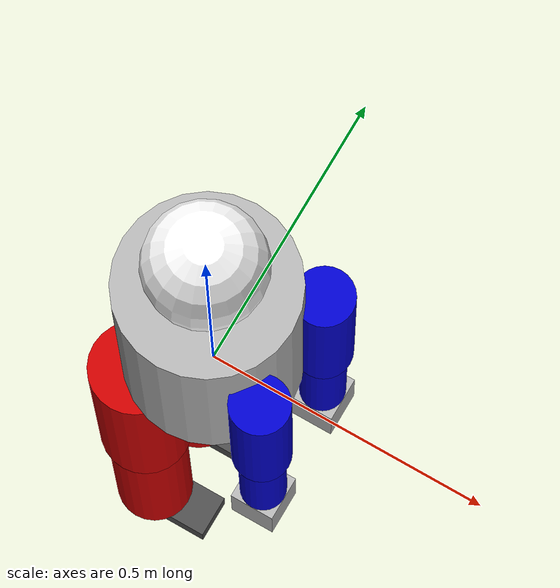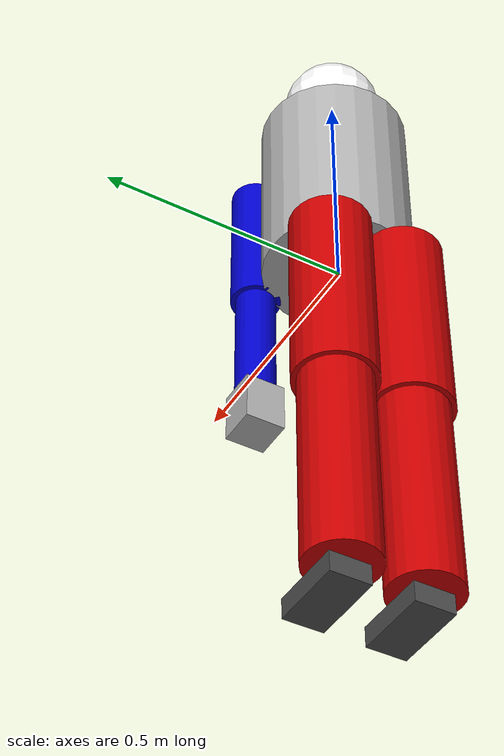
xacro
<?xml version="1.0"?>
<robot xmlns:xacro="http://www.ros.org/wiki/xacro" name="simple_humanoid">

  <!-- Define properties -->
  <xacro:property name="M_PI" value="3.1415926535897931" />
  <xacro:property name="torso_mass" value="10.0" />
  <xacro:property name="head_mass" value="2.0" />
  <xacro:property name="arm_mass" value="1.5" />
  <xacro:property name="leg_mass" value="3.0" />

  <!-- Base link -->
  <link name="base_link" />

  <!-- Torso -->
  <link name="torso">
    <inertial>
      <mass value="${torso_mass}" />
      <origin xyz="0 0 0.2" rpy="0 0 0" />
      <inertia ixx="0.4" ixy="0.0" ixz="0.0" iyy="0.4" iyz="0.0" izz="0.2" />
    </inertial>
    <visual>
      <origin xyz="0 0 0.2" rpy="0 0 0" />
      <geometry>
        <cylinder length="0.4" radius="0.15" />
      </geometry>
      <material name="light_grey">
        <color rgba="0.7 0.7 0.7 1.0" />
      </material>
    </visual>
    <collision>
      <origin xyz="0 0 0.2" rpy="0 0 0" />
      <geometry>
        <cylinder length="0.4" radius="0.15" />
      </geometry>
    </collision>
  </link>

  <joint name="base_to_torso" type="fixed">
    <parent link="base_link" />
    <child link="torso" />
    <origin xyz="0 0 0" rpy="0 0 0" />
  </joint>

  <!-- Head -->
  <link name="head">
    <inertial>
      <mass value="${head_mass}" />
      <origin xyz="0 0 0.1" rpy="0 0 0" />
      <inertia ixx="0.02" ixy="0.0" ixz="0.0" iyy="0.02" iyz="0.0" izz="0.02" />
    </inertial>
    <visual>
      <origin xyz="0 0 0.1" rpy="0 0 0" />
      <geometry>
        <sphere radius="0.1" />
      </geometry>
      <material name="white">
        <color rgba="1.0 1.0 1.0 1.0" />
      </material>
    </visual>
    <collision>
      <origin xyz="0 0 0.1" rpy="0 0 0" />
      <geometry>
        <sphere radius="0.1" />
      </geometry>
    </collision>
  </link>

  <!-- Neck Joint -->
  <joint name="neck_joint" type="revolute">
    <parent link="torso" />
    <child link="head" />
    <origin xyz="0.0 0.0 0.4" rpy="0 0 0" />
    <axis xyz="0 1 0" />
    <limit lower="${-M_PI/3}" upper="${M_PI/3}" effort="10" velocity="2.0" />
  </joint>

  <!-- Left Arm Macro -->
  <xacro:macro name="simple_arm" params="prefix parent *origin">
    <link name="${prefix}_upper_arm">
      <inertial>
        <mass value="${arm_mass}" />
        <origin xyz="0 0 -0.15" rpy="0 0 0" />
        <inertia ixx="0.01" ixy="0.0" ixz="0.0" iyy="0.01" iyz="0.0" izz="0.005" />
      </inertial>
      <visual>
        <origin xyz="0 0 -0.15" rpy="0 0 0" />
        <geometry>
          <cylinder length="0.3" radius="0.05" />
        </geometry>
        <material name="blue">
          <color rgba="0 0 0.8 1.0" />
        </material>
      </visual>
      <collision>
        <origin xyz="0 0 -0.15" rpy="0 0 0" />
        <geometry>
          <cylinder length="0.3" radius="0.05" />
        </geometry>
      </collision>
    </link>

    <joint name="${prefix}_shoulder_joint" type="revolute">
      <parent link="${parent}" />
      <child link="${prefix}_upper_arm" />
      <xacro:insert_block name="origin" />
      <axis xyz="0 0 1" />
      <limit lower="${-M_PI/2}" upper="${M_PI/2}" effort="15" velocity="1.5" />
    </joint>

    <link name="${prefix}_lower_arm">
      <inertial>
        <mass value="${arm_mass * 0.7}" />
        <origin xyz="0 0 -0.12" rpy="0 0 0" />
        <inertia ixx="0.005" ixy="0.0" ixz="0.0" iyy="0.005" iyz="0.0" izz="0.003" />
      </inertial>
      <visual>
        <origin xyz="0 0 -0.12" rpy="0 0 0" />
        <geometry>
          <cylinder length="0.24" radius="0.04" />
        </geometry>
        <material name="blue">
          <color rgba="0 0 0.8 1.0" />
        </material>
      </visual>
      <collision>
        <origin xyz="0 0 -0.12" rpy="0 0 0" />
        <geometry>
          <cylinder length="0.24" radius="0.04" />
        </geometry>
      </collision>
    </link>

    <joint name="${prefix}_elbow_joint" type="revolute">
      <parent link="${prefix}_upper_arm" />
      <child link="${prefix}_lower_arm" />
      <origin xyz="0.0 0.0 -0.3" rpy="0 0 0" />
      <axis xyz="0 0 1" />
      <limit lower="${-M_PI/2}" upper="${M_PI/2}" effort="10" velocity="1.0" />
    </joint>

    <link name="${prefix}_hand">
      <inertial>
        <mass value="${arm_mass * 0.3}" />
        <origin xyz="0 0 -0.05" rpy="0 0 0" />
        <inertia ixx="0.001" ixy="0.0" ixz="0.0" iyy="0.001" iyz="0.0" izz="0.001" />
      </inertial>
      <visual>
        <origin xyz="0 0 -0.05" rpy="0 0 0" />
        <geometry>
          <box size="0.08 0.08 0.1" />
        </geometry>
        <material name="light_grey">
          <color rgba="0.7 0.7 0.7 1.0" />
        </material>
      </visual>
      <collision>
        <origin xyz="0 0 -0.05" rpy="0 0 0" />
        <geometry>
          <box size="0.08 0.08 0.1" />
        </geometry>
      </collision>
    </link>

    <joint name="${prefix}_wrist_joint" type="revolute">
      <parent link="${prefix}_lower_arm" />
      <child link="${prefix}_hand" />
      <origin xyz="0.0 0.0 -0.24" rpy="0 0 0" />
      <axis xyz="0 1 0" />
      <limit lower="${-M_PI/3}" upper="${M_PI/3}" effort="5" velocity="1.0" />
    </joint>
  </xacro:macro>

  <!-- Right Arm Macro -->
  <xacro:macro name="simple_arm_right" params="prefix parent *origin">
    <link name="${prefix}_upper_arm">
      <inertial>
        <mass value="${arm_mass}" />
        <origin xyz="0 0 -0.15" rpy="0 0 0" />
        <inertia ixx="0.01" ixy="0.0" ixz="0.0" iyy="0.01" iyz="0.0" izz="0.005" />
      </inertial>
      <visual>
        <origin xyz="0 0 -0.15" rpy="0 0 0" />
        <geometry>
          <cylinder length="0.3" radius="0.05" />
        </geometry>
        <material name="blue">
          <color rgba="0 0 0.8 1.0" />
        </material>
      </visual>
      <collision>
        <origin xyz="0 0 -0.15" rpy="0 0 0" />
        <geometry>
          <cylinder length="0.3" radius="0.05" />
        </geometry>
      </collision>
    </link>

    <joint name="${prefix}_shoulder_joint" type="revolute">
      <parent link="${parent}" />
      <child link="${prefix}_upper_arm" />
      <xacro:insert_block name="origin" />
      <axis xyz="0 0 1" />
      <limit lower="${-M_PI/2}" upper="${M_PI/2}" effort="15" velocity="1.5" />
    </joint>

    <link name="${prefix}_lower_arm">
      <inertial>
        <mass value="${arm_mass * 0.7}" />
        <origin xyz="0 0 -0.12" rpy="0 0 0" />
        <inertia ixx="0.005" ixy="0.0" ixz="0.0" iyy="0.005" iyz="0.0" izz="0.003" />
      </inertial>
      <visual>
        <origin xyz="0 0 -0.12" rpy="0 0 0" />
        <geometry>
          <cylinder length="0.24" radius="0.04" />
        </geometry>
        <material name="blue">
          <color rgba="0 0 0.8 1.0" />
        </material>
      </visual>
      <collision>
        <origin xyz="0 0 -0.12" rpy="0 0 0" />
        <geometry>
          <cylinder length="0.24" radius="0.04" />
        </geometry>
      </collision>
    </link>

    <joint name="${prefix}_elbow_joint" type="revolute">
      <parent link="${prefix}_upper_arm" />
      <child link="${prefix}_lower_arm" />
      <origin xyz="0.0 0.0 -0.3" rpy="0 0 0" />
      <axis xyz="0 0 1" />
      <limit lower="${-M_PI/2}" upper="${M_PI/2}" effort="10" velocity="1.0" />
    </joint>

    <link name="${prefix}_hand">
      <inertial>
        <mass value="${arm_mass * 0.3}" />
        <origin xyz="0 0 -0.05" rpy="0 0 0" />
        <inertia ixx="0.001" ixy="0.0" ixz="0.0" iyy="0.001" iyz="0.0" izz="0.001" />
      </inertial>
      <visual>
        <origin xyz="0 0 -0.05" rpy="0 0 0" />
        <geometry>
          <box size="0.08 0.08 0.1" />
        </geometry>
        <material name="light_grey">
          <color rgba="0.7 0.7 0.7 1.0" />
        </material>
      </visual>
      <collision>
        <origin xyz="0 0 -0.05" rpy="0 0 0" />
        <geometry>
          <box size="0.08 0.08 0.1" />
        </geometry>
      </collision>
    </link>

    <joint name="${prefix}_wrist_joint" type="revolute">
      <parent link="${prefix}_lower_arm" />
      <child link="${prefix}_hand" />
      <origin xyz="0.0 0.0 -0.24" rpy="0 0 0" />
      <axis xyz="0 1 0" />
      <limit lower="${-M_PI/3}" upper="${M_PI/3}" effort="5" velocity="1.0" />
    </joint>
  </xacro:macro>

  <!-- Left Leg Macro -->
  <xacro:macro name="simple_leg" params="prefix parent *origin">
    <link name="${prefix}_upper_leg">
      <inertial>
        <mass value="${leg_mass}" />
        <origin xyz="0 0 -0.2" rpy="0 0 0" />
        <inertia ixx="0.05" ixy="0.0" ixz="0.0" iyy="0.05" iyz="0.0" izz="0.02" />
      </inertial>
      <visual>
        <origin xyz="0 0 -0.2" rpy="0 0 0" />
        <geometry>
          <cylinder length="0.4" radius="0.08" />
        </geometry>
        <material name="red">
          <color rgba="0.8 0 0 1.0" />
        </material>
      </visual>
      <collision>
        <origin xyz="0 0 -0.2" rpy="0 0 0" />
        <geometry>
          <cylinder length="0.4" radius="0.08" />
        </geometry>
      </collision>
    </link>

    <joint name="${prefix}_hip_joint" type="revolute">
      <parent link="${parent}" />
      <child link="${prefix}_upper_leg" />
      <xacro:insert_block name="origin" />
      <axis xyz="0 0 1" />
      <limit lower="${-M_PI/3}" upper="${M_PI/3}" effort="20" velocity="1.0" />
    </joint>

    <link name="${prefix}_lower_leg">
      <inertial>
        <mass value="${leg_mass * 0.8}" />
        <origin xyz="0 0 -0.2" rpy="0 0 0" />
        <inertia ixx="0.04" ixy="0.0" ixz="0.0" iyy="0.04" iyz="0.0" izz="0.015" />
      </inertial>
      <visual>
        <origin xyz="0 0 -0.2" rpy="0 0 0" />
        <geometry>
          <cylinder length="0.4" radius="0.07" />
        </geometry>
        <material name="red">
          <color rgba="0.8 0 0 1.0" />
        </material>
      </visual>
      <collision>
        <origin xyz="0 0 -0.2" rpy="0 0 0" />
        <geometry>
          <cylinder length="0.4" radius="0.07" />
        </geometry>
      </collision>
    </link>

    <joint name="${prefix}_knee_joint" type="revolute">
      <parent link="${prefix}_upper_leg" />
      <child link="${prefix}_lower_leg" />
      <origin xyz="0.0 0.0 -0.4" rpy="0 0 0" />
      <axis xyz="0 0 1" />
      <limit lower="0" upper="${M_PI/2}" effort="20" velocity="1.0" />
    </joint>

    <link name="${prefix}_foot">
      <inertial>
        <mass value="${leg_mass * 0.3}" />
        <origin xyz="0.05 0 -0.02" rpy="0 0 0" />
        <inertia ixx="0.002" ixy="0.0" ixz="0.0" iyy="0.003" iyz="0.0" izz="0.004" />
      </inertial>
      <visual>
        <origin xyz="0.05 0 -0.02" rpy="0 0 0" />
        <geometry>
          <box size="0.15 0.08 0.04" />
        </geometry>
        <material name="dark_grey">
          <color rgba="0.3 0.3 0.3 1.0" />
        </material>
      </visual>
      <collision>
        <origin xyz="0.05 0 -0.02" rpy="0 0 0" />
        <geometry>
          <box size="0.15 0.08 0.04" />
        </geometry>
      </collision>
    </link>

    <joint name="${prefix}_ankle_joint" type="revolute">
      <parent link="${prefix}_lower_leg" />
      <child link="${prefix}_foot" />
      <origin xyz="0.0 0.0 -0.4" rpy="0 0 0" />
      <axis xyz="0 1 0" />
      <limit lower="${-M_PI/6}" upper="${M_PI/6}" effort="10" velocity="0.5" />
    </joint>
  </xacro:macro>

  <!-- Left Arm -->
  <xacro:simple_arm prefix="left" parent="torso">
    <origin xyz="0.15 0.1 0.3" rpy="0 0 0" />
  </xacro:simple_arm>

  <!-- Right Arm -->
  <xacro:simple_arm_right prefix="right" parent="torso">
    <origin xyz="0.15 -0.1 0.3" rpy="0 0 0" />
  </xacro:simple_arm_right>

  <!-- Left Leg -->
  <xacro:simple_leg prefix="left" parent="torso">
    <origin xyz="-0.1 0.08 0.0" rpy="0 0 0" />
  </xacro:simple_leg>

  <!-- Right Leg -->
  <xacro:simple_leg prefix="right" parent="torso">
    <origin xyz="-0.1 -0.08 0.0" rpy="0 0 0" />
  </xacro:simple_leg>

  <!-- Sensors -->
  <link name="imu_link">
    <inertial>
      <mass value="0.1" />
      <origin xyz="0 0 0" />
      <inertia ixx="0.0001" ixy="0" ixz="0" iyy="0.0001" iyz="0" izz="0.0001" />
    </inertial>
  </link>
  <joint name="imu_joint" type="fixed">
    <parent link="torso" />
    <child link="imu_link" />
    <origin xyz="0 0 0.1" rpy="0 0 0" />
  </joint>

  <link name="camera_link">
    <inertial>
      <mass value="0.1" />
      <origin xyz="0 0 0" />
      <inertia ixx="0.0001" ixy="0" ixz="0" iyy="0.0001" iyz="0" izz="0.0001" />
    </inertial>
    <visual>
      <origin xyz="0 0 0" rpy="0 0 0" />
      <geometry>
        <box size="0.02 0.04 0.01" />
      </geometry>
      <material name="black">
        <color rgba="0 0 0 1" />
      </material>
    </visual>
  </link>
  <joint name="camera_joint" type="fixed">
    <parent link="head" />
    <child link="camera_link" />
    <origin xyz="0.05 0 0.05" rpy="0 0 0" />
  </joint>

  <!-- Gazebo plugins -->
  <gazebo reference="base_link">
    <material>Gazebo/Grey</material>
  </gazebo>

  <gazebo reference="torso">
    <material>Gazebo/Grey</material>
  </gazebo>

  <gazebo reference="head">
    <material>Gazebo/White</material>
  </gazebo>

  <gazebo reference="left_upper_arm">
    <material>Gazebo/Blue</material>
  </gazebo>

  <gazebo reference="right_upper_arm">
    <material>Gazebo/Blue</material>
  </gazebo>

  <gazebo reference="left_lower_arm">
    <material>Gazebo/Blue</material>
  </gazebo>

  <gazebo reference="right_lower_arm">
    <material>Gazebo/Blue</material>
  </gazebo>

  <gazebo reference="left_hand">
    <material>Gazebo/Grey</material>
  </gazebo>

  <gazebo reference="right_hand">
    <material>Gazebo/Grey</material>
  </gazebo>

  <gazebo reference="left_upper_leg">
    <material>Gazebo/Red</material>
  </gazebo>

  <gazebo reference="right_upper_leg">
    <material>Gazebo/Red</material>
  </gazebo>

  <gazebo reference="left_lower_leg">
    <material>Gazebo/Red</material>
  </gazebo>

  <gazebo reference="right_lower_leg">
    <material>Gazebo/Red</material>
  </gazebo>

  <gazebo reference="left_foot">
    <material>Gazebo/Black</material>
  </gazebo>

  <gazebo reference="right_foot">
    <material>Gazebo/Black</material>
  </gazebo>

  <!-- Gazebo plugins for sensors -->
  <gazebo reference="imu_link">
    <sensor name="imu_sensor" type="imu">
      <always_on>true</always_on>
      <update_rate>100</update_rate>
      <visualize>true</visualize>
    </sensor>
  </gazebo>

  <gazebo reference="camera_link">
    <sensor name="camera" type="camera">
      <always_on>true</always_on>
      <update_rate>30</update_rate>
      <camera name="head">
        <horizontal_fov>1.3962634</horizontal_fov>
        <image>
          <width>800</width>
          <height>600</height>
          <format>R8G8B8</format>
        </image>
        <clip>
          <near>0.1</near>
          <far>100</far>
        </clip>
      </camera>
      <plugin name="camera_controller" filename="libgazebo_ros_camera.so">
        <frame_name>camera_link</frame_name>
      </plugin>
    </sensor>
  </gazebo>

</robot>
